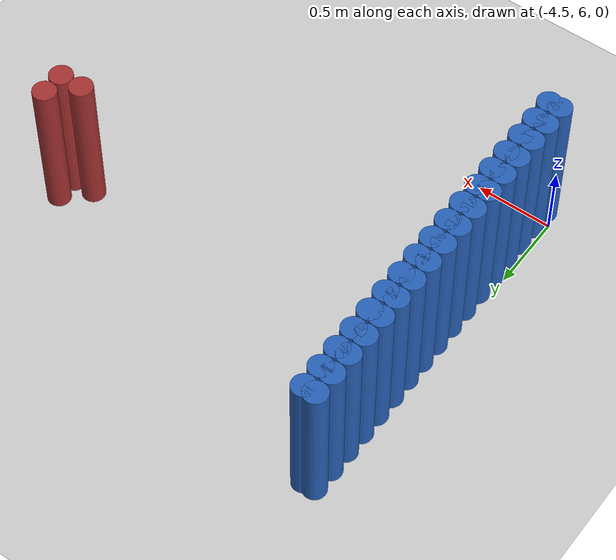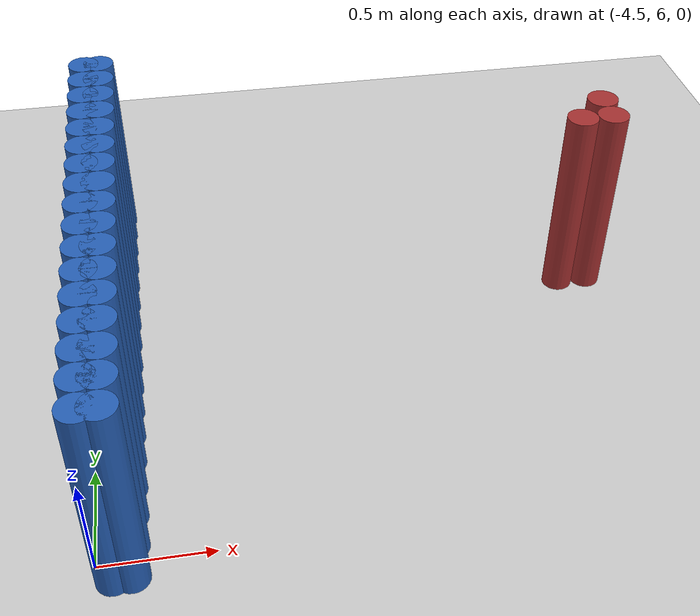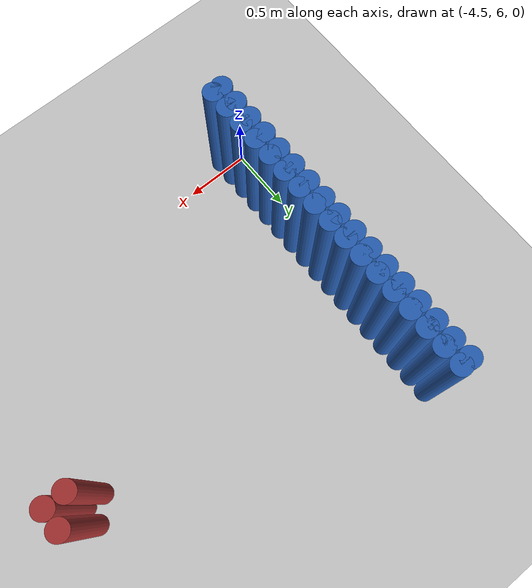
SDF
<sdf version="1.6">
 <world name="barn_world">
  <model name="ground_plane">
   <static>1</static>
   <link name="link">
    <collision name="collision">
     <geometry><plane><normal>0 0 1</normal><size>100 100</size></plane></geometry>
    </collision>
    <visual name="visual">
     <geometry><plane><normal>0 0 1</normal><size>100 100</size></plane></geometry>
     <material>
      <script><uri>file://media/materials/scripts/gazebo.material</uri><name>Gazebo/Grey</name></script>
     </material>
    </visual>
   </link>
  </model>
  <model name="unit_cylinder_131">
   <static>1</static>
   <pose>-4.3500 5.9250 0.5 0 0 0</pose>
   <link name="link">
    <collision name="collision">
     <geometry><cylinder><radius>0.075</radius><length>1</length></cylinder></geometry>
    </collision>
    <visual name="visual">
     <geometry><cylinder><radius>0.075</radius><length>1</length></cylinder></geometry>
     <material><ambient>0.152 0.379 0.72 1</ambient><diffuse>0.152 0.379 0.72 1</diffuse></material>
    </visual>
   </link>
  </model>
  <model name="unit_cylinder_132">
   <static>1</static>
   <pose>-4.3500 6.0750 0.5 0 0 0</pose>
   <link name="link">
    <collision name="collision">
     <geometry><cylinder><radius>0.075</radius><length>1</length></cylinder></geometry>
    </collision>
    <visual name="visual">
     <geometry><cylinder><radius>0.075</radius><length>1</length></cylinder></geometry>
     <material><ambient>0.152 0.379 0.72 1</ambient><diffuse>0.152 0.379 0.72 1</diffuse></material>
    </visual>
   </link>
  </model>
  <model name="unit_cylinder_133">
   <static>1</static>
   <pose>-4.3500 6.2250 0.5 0 0 0</pose>
   <link name="link">
    <collision name="collision">
     <geometry><cylinder><radius>0.075</radius><length>1</length></cylinder></geometry>
    </collision>
    <visual name="visual">
     <geometry><cylinder><radius>0.075</radius><length>1</length></cylinder></geometry>
     <material><ambient>0.152 0.379 0.72 1</ambient><diffuse>0.152 0.379 0.72 1</diffuse></material>
    </visual>
   </link>
  </model>
  <model name="unit_cylinder_134">
   <static>1</static>
   <pose>-4.3500 6.3750 0.5 0 0 0</pose>
   <link name="link">
    <collision name="collision">
     <geometry><cylinder><radius>0.075</radius><length>1</length></cylinder></geometry>
    </collision>
    <visual name="visual">
     <geometry><cylinder><radius>0.075</radius><length>1</length></cylinder></geometry>
     <material><ambient>0.152 0.379 0.72 1</ambient><diffuse>0.152 0.379 0.72 1</diffuse></material>
    </visual>
   </link>
  </model>
  <model name="unit_cylinder_135">
   <static>1</static>
   <pose>-4.3500 6.5250 0.5 0 0 0</pose>
   <link name="link">
    <collision name="collision">
     <geometry><cylinder><radius>0.075</radius><length>1</length></cylinder></geometry>
    </collision>
    <visual name="visual">
     <geometry><cylinder><radius>0.075</radius><length>1</length></cylinder></geometry>
     <material><ambient>0.152 0.379 0.72 1</ambient><diffuse>0.152 0.379 0.72 1</diffuse></material>
    </visual>
   </link>
  </model>
  <model name="unit_cylinder_136">
   <static>1</static>
   <pose>-4.3500 6.6750 0.5 0 0 0</pose>
   <link name="link">
    <collision name="collision">
     <geometry><cylinder><radius>0.075</radius><length>1</length></cylinder></geometry>
    </collision>
    <visual name="visual">
     <geometry><cylinder><radius>0.075</radius><length>1</length></cylinder></geometry>
     <material><ambient>0.152 0.379 0.72 1</ambient><diffuse>0.152 0.379 0.72 1</diffuse></material>
    </visual>
   </link>
  </model>
  <model name="unit_cylinder_137">
   <static>1</static>
   <pose>-4.3500 6.8250 0.5 0 0 0</pose>
   <link name="link">
    <collision name="collision">
     <geometry><cylinder><radius>0.075</radius><length>1</length></cylinder></geometry>
    </collision>
    <visual name="visual">
     <geometry><cylinder><radius>0.075</radius><length>1</length></cylinder></geometry>
     <material><ambient>0.152 0.379 0.72 1</ambient><diffuse>0.152 0.379 0.72 1</diffuse></material>
    </visual>
   </link>
  </model>
  <model name="unit_cylinder_138">
   <static>1</static>
   <pose>-4.3500 6.9750 0.5 0 0 0</pose>
   <link name="link">
    <collision name="collision">
     <geometry><cylinder><radius>0.075</radius><length>1</length></cylinder></geometry>
    </collision>
    <visual name="visual">
     <geometry><cylinder><radius>0.075</radius><length>1</length></cylinder></geometry>
     <material><ambient>0.152 0.379 0.72 1</ambient><diffuse>0.152 0.379 0.72 1</diffuse></material>
    </visual>
   </link>
  </model>
  <model name="unit_cylinder_139">
   <static>1</static>
   <pose>-4.3500 7.1250 0.5 0 0 0</pose>
   <link name="link">
    <collision name="collision">
     <geometry><cylinder><radius>0.075</radius><length>1</length></cylinder></geometry>
    </collision>
    <visual name="visual">
     <geometry><cylinder><radius>0.075</radius><length>1</length></cylinder></geometry>
     <material><ambient>0.152 0.379 0.72 1</ambient><diffuse>0.152 0.379 0.72 1</diffuse></material>
    </visual>
   </link>
  </model>
  <model name="unit_cylinder_140">
   <static>1</static>
   <pose>-4.3500 7.2750 0.5 0 0 0</pose>
   <link name="link">
    <collision name="collision">
     <geometry><cylinder><radius>0.075</radius><length>1</length></cylinder></geometry>
    </collision>
    <visual name="visual">
     <geometry><cylinder><radius>0.075</radius><length>1</length></cylinder></geometry>
     <material><ambient>0.152 0.379 0.72 1</ambient><diffuse>0.152 0.379 0.72 1</diffuse></material>
    </visual>
   </link>
  </model>
  <model name="unit_cylinder_141">
   <static>1</static>
   <pose>-4.3500 7.4250 0.5 0 0 0</pose>
   <link name="link">
    <collision name="collision">
     <geometry><cylinder><radius>0.075</radius><length>1</length></cylinder></geometry>
    </collision>
    <visual name="visual">
     <geometry><cylinder><radius>0.075</radius><length>1</length></cylinder></geometry>
     <material><ambient>0.152 0.379 0.72 1</ambient><diffuse>0.152 0.379 0.72 1</diffuse></material>
    </visual>
   </link>
  </model>
  <model name="unit_cylinder_142">
   <static>1</static>
   <pose>-4.3500 7.5750 0.5 0 0 0</pose>
   <link name="link">
    <collision name="collision">
     <geometry><cylinder><radius>0.075</radius><length>1</length></cylinder></geometry>
    </collision>
    <visual name="visual">
     <geometry><cylinder><radius>0.075</radius><length>1</length></cylinder></geometry>
     <material><ambient>0.152 0.379 0.72 1</ambient><diffuse>0.152 0.379 0.72 1</diffuse></material>
    </visual>
   </link>
  </model>
  <model name="unit_cylinder_143">
   <static>1</static>
   <pose>-4.3500 7.7250 0.5 0 0 0</pose>
   <link name="link">
    <collision name="collision">
     <geometry><cylinder><radius>0.075</radius><length>1</length></cylinder></geometry>
    </collision>
    <visual name="visual">
     <geometry><cylinder><radius>0.075</radius><length>1</length></cylinder></geometry>
     <material><ambient>0.152 0.379 0.72 1</ambient><diffuse>0.152 0.379 0.72 1</diffuse></material>
    </visual>
   </link>
  </model>
  <model name="unit_cylinder_144">
   <static>1</static>
   <pose>-4.3500 7.8750 0.5 0 0 0</pose>
   <link name="link">
    <collision name="collision">
     <geometry><cylinder><radius>0.075</radius><length>1</length></cylinder></geometry>
    </collision>
    <visual name="visual">
     <geometry><cylinder><radius>0.075</radius><length>1</length></cylinder></geometry>
     <material><ambient>0.152 0.379 0.72 1</ambient><diffuse>0.152 0.379 0.72 1</diffuse></material>
    </visual>
   </link>
  </model>
  <model name="unit_cylinder_145">
   <static>1</static>
   <pose>-4.3500 8.0250 0.5 0 0 0</pose>
   <link name="link">
    <collision name="collision">
     <geometry><cylinder><radius>0.075</radius><length>1</length></cylinder></geometry>
    </collision>
    <visual name="visual">
     <geometry><cylinder><radius>0.075</radius><length>1</length></cylinder></geometry>
     <material><ambient>0.152 0.379 0.72 1</ambient><diffuse>0.152 0.379 0.72 1</diffuse></material>
    </visual>
   </link>
  </model>
  <model name="unit_cylinder_146">
   <static>1</static>
   <pose>-4.3500 8.1750 0.5 0 0 0</pose>
   <link name="link">
    <collision name="collision">
     <geometry><cylinder><radius>0.075</radius><length>1</length></cylinder></geometry>
    </collision>
    <visual name="visual">
     <geometry><cylinder><radius>0.075</radius><length>1</length></cylinder></geometry>
     <material><ambient>0.152 0.379 0.72 1</ambient><diffuse>0.152 0.379 0.72 1</diffuse></material>
    </visual>
   </link>
  </model>
  <model name="unit_cylinder_147">
   <static>1</static>
   <pose>-4.3500 8.3250 0.5 0 0 0</pose>
   <link name="link">
    <collision name="collision">
     <geometry><cylinder><radius>0.075</radius><length>1</length></cylinder></geometry>
    </collision>
    <visual name="visual">
     <geometry><cylinder><radius>0.075</radius><length>1</length></cylinder></geometry>
     <material><ambient>0.152 0.379 0.72 1</ambient><diffuse>0.152 0.379 0.72 1</diffuse></material>
    </visual>
   </link>
  </model>
  <model name="unit_cylinder_162">
   <static>1</static>
   <pose>-2.1000 7.4250 0.5 0 0 0</pose>
   <link name="link">
    <collision name="collision">
     <geometry><cylinder><radius>0.075</radius><length>1</length></cylinder></geometry>
    </collision>
    <visual name="visual">
     <geometry><cylinder><radius>0.075</radius><length>1</length></cylinder></geometry>
     <material><ambient>0.648 0.192 0.192 1</ambient><diffuse>0.648 0.192 0.192 1</diffuse></material>
    </visual>
   </link>
  </model>
  <model name="unit_cylinder_163">
   <static>1</static>
   <pose>-1.9500 7.4250 0.5 0 0 0</pose>
   <link name="link">
    <collision name="collision">
     <geometry><cylinder><radius>0.075</radius><length>1</length></cylinder></geometry>
    </collision>
    <visual name="visual">
     <geometry><cylinder><radius>0.075</radius><length>1</length></cylinder></geometry>
     <material><ambient>0.648 0.192 0.192 1</ambient><diffuse>0.648 0.192 0.192 1</diffuse></material>
    </visual>
   </link>
  </model>
  <model name="unit_cylinder_164">
   <static>1</static>
   <pose>-1.9500 7.5750 0.5 0 0 0</pose>
   <link name="link">
    <collision name="collision">
     <geometry><cylinder><radius>0.075</radius><length>1</length></cylinder></geometry>
    </collision>
    <visual name="visual">
     <geometry><cylinder><radius>0.075</radius><length>1</length></cylinder></geometry>
     <material><ambient>0.648 0.192 0.192 1</ambient><diffuse>0.648 0.192 0.192 1</diffuse></material>
    </visual>
   </link>
  </model>
  <model name="unit_cylinder_255">
   <static>1</static>
   <pose>-4.4250 5.9250 0.5 0 0 0</pose>
   <link name="link">
    <collision name="collision">
     <geometry><cylinder><radius>0.075</radius><length>1</length></cylinder></geometry>
    </collision>
    <visual name="visual">
     <geometry><cylinder><radius>0.075</radius><length>1</length></cylinder></geometry>
     <material><ambient>0.152 0.379 0.72 1</ambient><diffuse>0.152 0.379 0.72 1</diffuse></material>
    </visual>
   </link>
  </model>
  <model name="unit_cylinder_257">
   <static>1</static>
   <pose>-4.4250 6.0750 0.5 0 0 0</pose>
   <link name="link">
    <collision name="collision">
     <geometry><cylinder><radius>0.075</radius><length>1</length></cylinder></geometry>
    </collision>
    <visual name="visual">
     <geometry><cylinder><radius>0.075</radius><length>1</length></cylinder></geometry>
     <material><ambient>0.152 0.379 0.72 1</ambient><diffuse>0.152 0.379 0.72 1</diffuse></material>
    </visual>
   </link>
  </model>
  <model name="unit_cylinder_259">
   <static>1</static>
   <pose>-4.4250 6.2250 0.5 0 0 0</pose>
   <link name="link">
    <collision name="collision">
     <geometry><cylinder><radius>0.075</radius><length>1</length></cylinder></geometry>
    </collision>
    <visual name="visual">
     <geometry><cylinder><radius>0.075</radius><length>1</length></cylinder></geometry>
     <material><ambient>0.152 0.379 0.72 1</ambient><diffuse>0.152 0.379 0.72 1</diffuse></material>
    </visual>
   </link>
  </model>
  <model name="unit_cylinder_261">
   <static>1</static>
   <pose>-4.4250 6.3750 0.5 0 0 0</pose>
   <link name="link">
    <collision name="collision">
     <geometry><cylinder><radius>0.075</radius><length>1</length></cylinder></geometry>
    </collision>
    <visual name="visual">
     <geometry><cylinder><radius>0.075</radius><length>1</length></cylinder></geometry>
     <material><ambient>0.152 0.379 0.72 1</ambient><diffuse>0.152 0.379 0.72 1</diffuse></material>
    </visual>
   </link>
  </model>
  <model name="unit_cylinder_263">
   <static>1</static>
   <pose>-4.4250 6.5250 0.5 0 0 0</pose>
   <link name="link">
    <collision name="collision">
     <geometry><cylinder><radius>0.075</radius><length>1</length></cylinder></geometry>
    </collision>
    <visual name="visual">
     <geometry><cylinder><radius>0.075</radius><length>1</length></cylinder></geometry>
     <material><ambient>0.152 0.379 0.72 1</ambient><diffuse>0.152 0.379 0.72 1</diffuse></material>
    </visual>
   </link>
  </model>
  <model name="unit_cylinder_265">
   <static>1</static>
   <pose>-4.4250 6.6750 0.5 0 0 0</pose>
   <link name="link">
    <collision name="collision">
     <geometry><cylinder><radius>0.075</radius><length>1</length></cylinder></geometry>
    </collision>
    <visual name="visual">
     <geometry><cylinder><radius>0.075</radius><length>1</length></cylinder></geometry>
     <material><ambient>0.152 0.379 0.72 1</ambient><diffuse>0.152 0.379 0.72 1</diffuse></material>
    </visual>
   </link>
  </model>
  <model name="unit_cylinder_267">
   <static>1</static>
   <pose>-4.4250 6.8250 0.5 0 0 0</pose>
   <link name="link">
    <collision name="collision">
     <geometry><cylinder><radius>0.075</radius><length>1</length></cylinder></geometry>
    </collision>
    <visual name="visual">
     <geometry><cylinder><radius>0.075</radius><length>1</length></cylinder></geometry>
     <material><ambient>0.152 0.379 0.72 1</ambient><diffuse>0.152 0.379 0.72 1</diffuse></material>
    </visual>
   </link>
  </model>
  <model name="unit_cylinder_269">
   <static>1</static>
   <pose>-4.4250 6.9750 0.5 0 0 0</pose>
   <link name="link">
    <collision name="collision">
     <geometry><cylinder><radius>0.075</radius><length>1</length></cylinder></geometry>
    </collision>
    <visual name="visual">
     <geometry><cylinder><radius>0.075</radius><length>1</length></cylinder></geometry>
     <material><ambient>0.152 0.379 0.72 1</ambient><diffuse>0.152 0.379 0.72 1</diffuse></material>
    </visual>
   </link>
  </model>
  <model name="unit_cylinder_271">
   <static>1</static>
   <pose>-4.4250 7.1250 0.5 0 0 0</pose>
   <link name="link">
    <collision name="collision">
     <geometry><cylinder><radius>0.075</radius><length>1</length></cylinder></geometry>
    </collision>
    <visual name="visual">
     <geometry><cylinder><radius>0.075</radius><length>1</length></cylinder></geometry>
     <material><ambient>0.152 0.379 0.72 1</ambient><diffuse>0.152 0.379 0.72 1</diffuse></material>
    </visual>
   </link>
  </model>
  <model name="unit_cylinder_273">
   <static>1</static>
   <pose>-4.4250 7.2750 0.5 0 0 0</pose>
   <link name="link">
    <collision name="collision">
     <geometry><cylinder><radius>0.075</radius><length>1</length></cylinder></geometry>
    </collision>
    <visual name="visual">
     <geometry><cylinder><radius>0.075</radius><length>1</length></cylinder></geometry>
     <material><ambient>0.152 0.379 0.72 1</ambient><diffuse>0.152 0.379 0.72 1</diffuse></material>
    </visual>
   </link>
  </model>
  <model name="unit_cylinder_275">
   <static>1</static>
   <pose>-4.4250 7.4250 0.5 0 0 0</pose>
   <link name="link">
    <collision name="collision">
     <geometry><cylinder><radius>0.075</radius><length>1</length></cylinder></geometry>
    </collision>
    <visual name="visual">
     <geometry><cylinder><radius>0.075</radius><length>1</length></cylinder></geometry>
     <material><ambient>0.152 0.379 0.72 1</ambient><diffuse>0.152 0.379 0.72 1</diffuse></material>
    </visual>
   </link>
  </model>
  <model name="unit_cylinder_277">
   <static>1</static>
   <pose>-4.4250 7.5750 0.5 0 0 0</pose>
   <link name="link">
    <collision name="collision">
     <geometry><cylinder><radius>0.075</radius><length>1</length></cylinder></geometry>
    </collision>
    <visual name="visual">
     <geometry><cylinder><radius>0.075</radius><length>1</length></cylinder></geometry>
     <material><ambient>0.152 0.379 0.72 1</ambient><diffuse>0.152 0.379 0.72 1</diffuse></material>
    </visual>
   </link>
  </model>
  <model name="unit_cylinder_279">
   <static>1</static>
   <pose>-4.4250 7.7250 0.5 0 0 0</pose>
   <link name="link">
    <collision name="collision">
     <geometry><cylinder><radius>0.075</radius><length>1</length></cylinder></geometry>
    </collision>
    <visual name="visual">
     <geometry><cylinder><radius>0.075</radius><length>1</length></cylinder></geometry>
     <material><ambient>0.152 0.379 0.72 1</ambient><diffuse>0.152 0.379 0.72 1</diffuse></material>
    </visual>
   </link>
  </model>
  <model name="unit_cylinder_281">
   <static>1</static>
   <pose>-4.4250 7.8750 0.5 0 0 0</pose>
   <link name="link">
    <collision name="collision">
     <geometry><cylinder><radius>0.075</radius><length>1</length></cylinder></geometry>
    </collision>
    <visual name="visual">
     <geometry><cylinder><radius>0.075</radius><length>1</length></cylinder></geometry>
     <material><ambient>0.152 0.379 0.72 1</ambient><diffuse>0.152 0.379 0.72 1</diffuse></material>
    </visual>
   </link>
  </model>
  <model name="unit_cylinder_283">
   <static>1</static>
   <pose>-4.4250 8.0250 0.5 0 0 0</pose>
   <link name="link">
    <collision name="collision">
     <geometry><cylinder><radius>0.075</radius><length>1</length></cylinder></geometry>
    </collision>
    <visual name="visual">
     <geometry><cylinder><radius>0.075</radius><length>1</length></cylinder></geometry>
     <material><ambient>0.152 0.379 0.72 1</ambient><diffuse>0.152 0.379 0.72 1</diffuse></material>
    </visual>
   </link>
  </model>
  <model name="unit_cylinder_285">
   <static>1</static>
   <pose>-4.4250 8.1750 0.5 0 0 0</pose>
   <link name="link">
    <collision name="collision">
     <geometry><cylinder><radius>0.075</radius><length>1</length></cylinder></geometry>
    </collision>
    <visual name="visual">
     <geometry><cylinder><radius>0.075</radius><length>1</length></cylinder></geometry>
     <material><ambient>0.152 0.379 0.72 1</ambient><diffuse>0.152 0.379 0.72 1</diffuse></material>
    </visual>
   </link>
  </model>
  <model name="unit_cylinder_287">
   <static>1</static>
   <pose>-4.4250 8.3250 0.5 0 0 0</pose>
   <link name="link">
    <collision name="collision">
     <geometry><cylinder><radius>0.075</radius><length>1</length></cylinder></geometry>
    </collision>
    <visual name="visual">
     <geometry><cylinder><radius>0.075</radius><length>1</length></cylinder></geometry>
     <material><ambient>0.152 0.379 0.72 1</ambient><diffuse>0.152 0.379 0.72 1</diffuse></material>
    </visual>
   </link>
  </model>
 </world>
</sdf>
